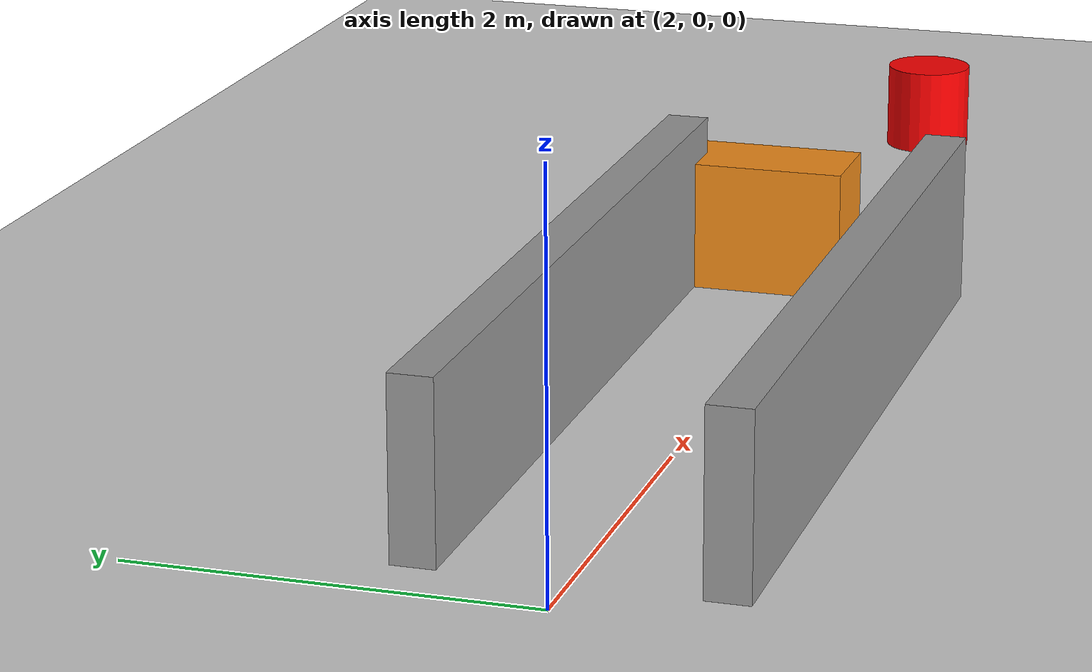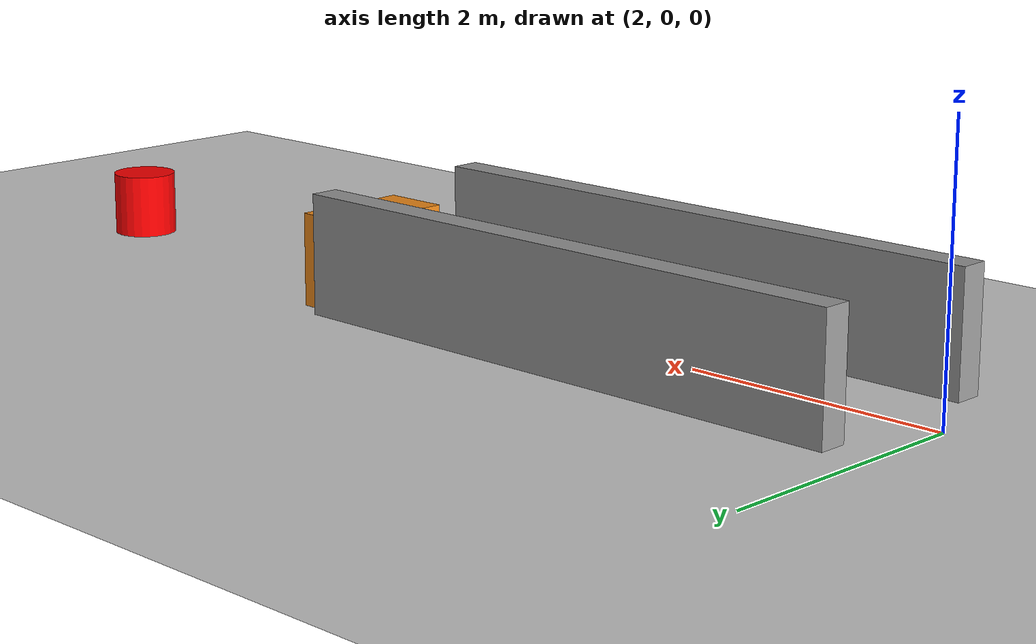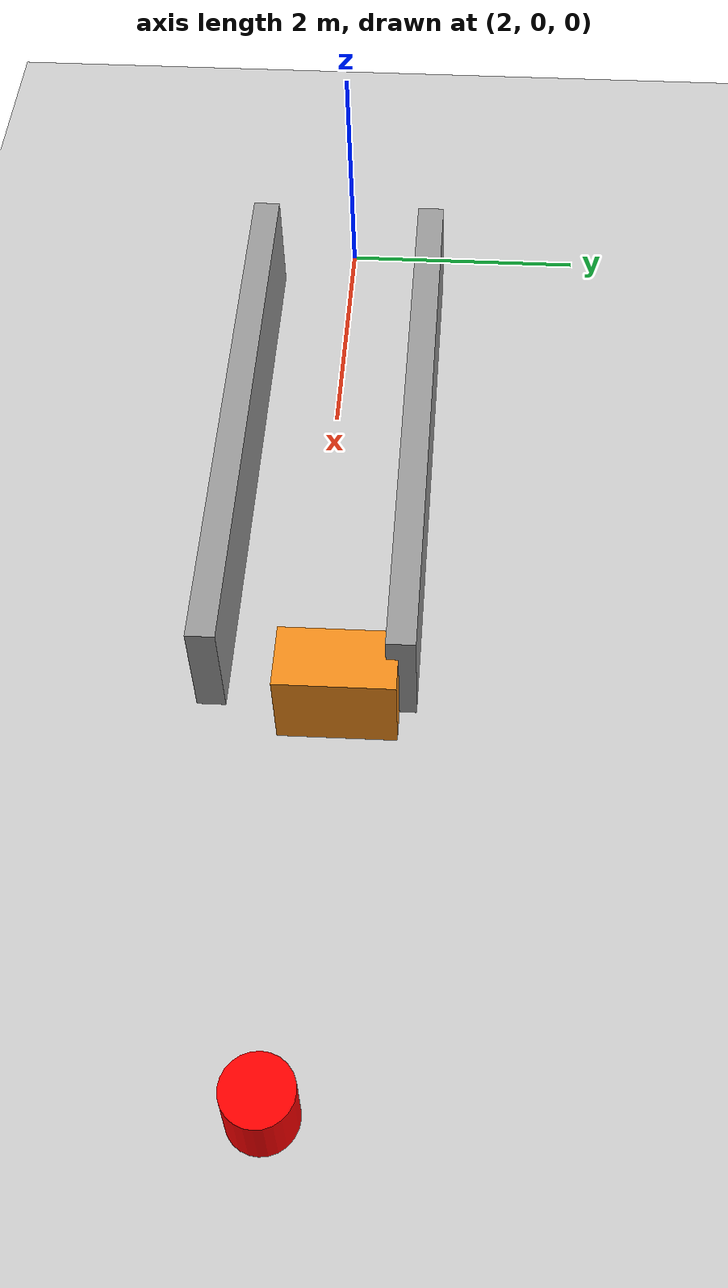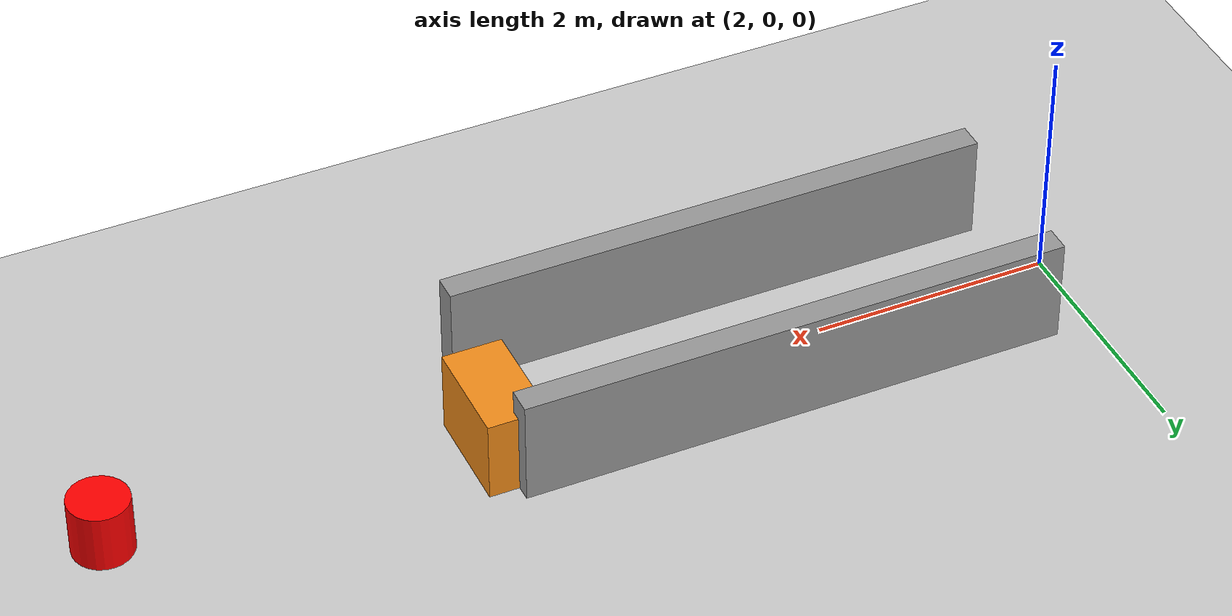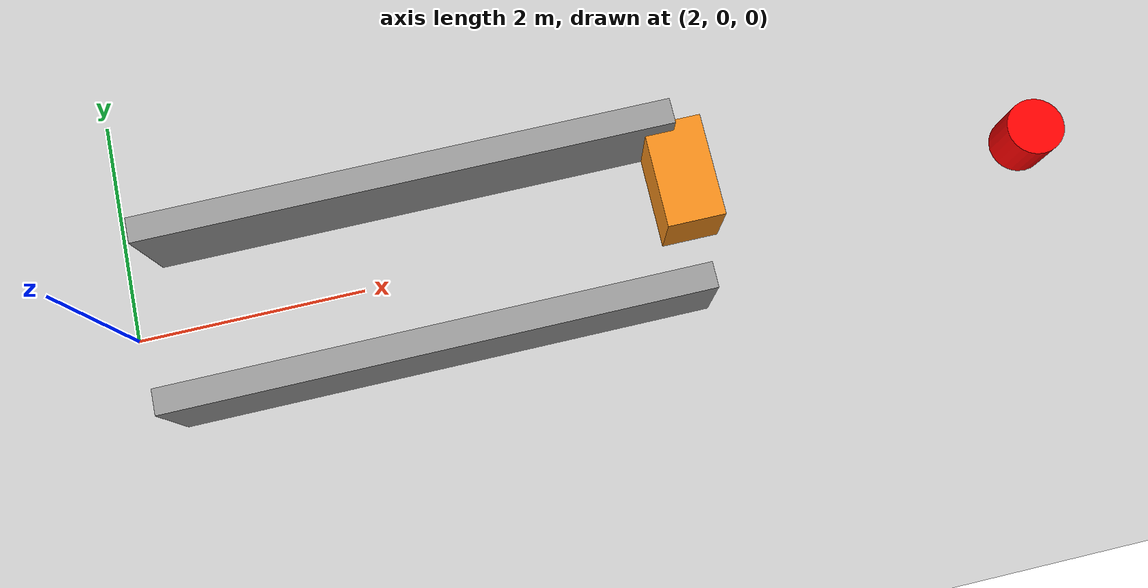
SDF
<?xml version="1.0" ?>
<sdf version="1.5">
  <world name="disaster_scene_b">
    <!-- Transport/ROS bridge is inert for ideal backend and required by RotorS. -->
    <plugin name="rotors_ros_interface_plugin"
            filename="librotors_gazebo_ros_interface_plugin.so" />
    <include>
      <uri>model://sun</uri>
    </include>
    <include>
      <uri>model://ground_plane</uri>
    </include>

    <physics type="ode">
      <max_step_size>0.001</max_step_size>
      <real_time_update_rate>1000</real_time_update_rate>
    </physics>

    <model name="narrow_passage_left">
      <static>true</static>
      <pose>4.6 0.72 0.45 0 0 0</pose>
      <link name="link">
        <collision name="collision">
          <geometry><box><size>4.6 0.22 0.90</size></box></geometry>
        </collision>
        <visual name="visual">
          <geometry><box><size>4.6 0.22 0.90</size></box></geometry>
          <material><script><uri>file://media/materials/scripts/gazebo.material</uri><name>Gazebo/Gray</name></script></material>
        </visual>
      </link>
    </model>

    <model name="narrow_passage_right">
      <static>true</static>
      <pose>4.6 -0.72 0.45 0 0 0</pose>
      <link name="link">
        <collision name="collision">
          <geometry><box><size>4.6 0.22 0.90</size></box></geometry>
        </collision>
        <visual name="visual">
          <geometry><box><size>4.6 0.22 0.90</size></box></geometry>
          <material><script><uri>file://media/materials/scripts/gazebo.material</uri><name>Gazebo/Gray</name></script></material>
        </visual>
      </link>
    </model>

    <model name="partial_block">
      <static>true</static>
      <pose>6.9 0.25 0.35 0 0 0</pose>
      <link name="link">
        <collision name="collision">
          <geometry><box><size>0.50 0.90 0.70</size></box></geometry>
        </collision>
        <visual name="visual">
          <geometry><box><size>0.50 0.90 0.70</size></box></geometry>
          <material><script><uri>file://media/materials/scripts/gazebo.material</uri><name>Gazebo/Orange</name></script></material>
        </visual>
      </link>
    </model>

    <model name="victim_marker">
      <static>true</static>
      <pose>10 0 0.25 0 0 0</pose>
      <link name="link">
        <visual name="visual">
          <geometry><cylinder><radius>0.25</radius><length>0.5</length></cylinder></geometry>
          <material><ambient>1 0 0 1</ambient><diffuse>1 0 0 1</diffuse></material>
        </visual>
      </link>
    </model>
  </world>
</sdf>
